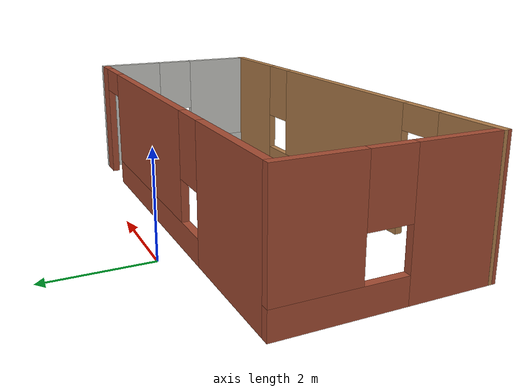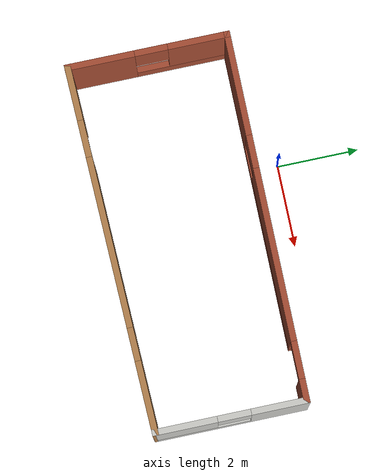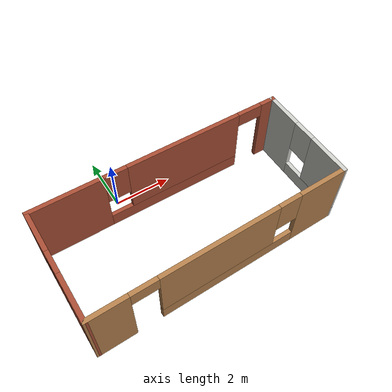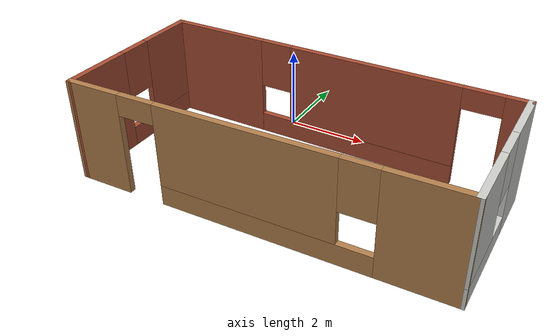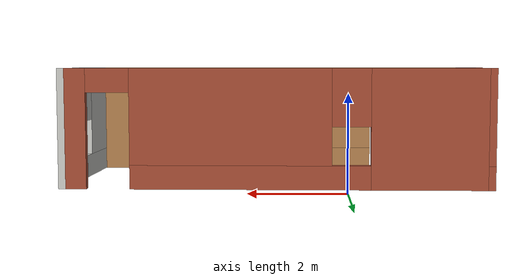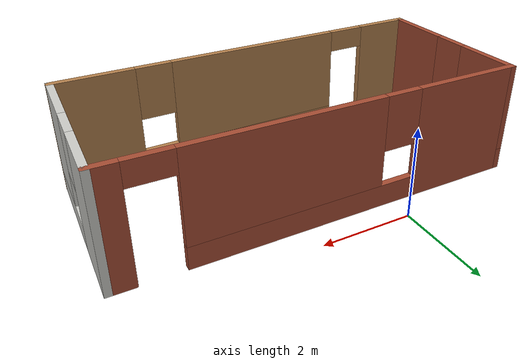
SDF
<?xml version='1.0'?>
<sdf version='1.6'>
  <model name='my_world'>
    <pose frame=''>1.455 -2.55604 0 0 -0 0</pose>
    <link name='Wall_0'>
      <pose frame=''>-4.425 0.001044 0 0 -0 1.5708</pose>
      <visual name='Wall_0_Visual_0'>
        <pose frame=''>-1.1575 0 1.25 0 -0 0</pose>
        <geometry>
          <box>
            <size>1.685 0.15 2.5</size>
          </box>
        </geometry>
        <material>
          <script>
            <uri>file://media/materials/scripts/gazebo.material</uri>
            <name>Gazebo/Bricks</name>
          </script>
          <ambient>1 1 1 1</ambient>
        </material>
      </visual>
      <collision name='Wall_0_Collision_0'>
        <geometry>
          <box>
            <size>1.685 0.15 2.5</size>
          </box>
        </geometry>
        <pose frame=''>-1.1575 0 1.25 0 -0 0</pose>
      </collision>
      <visual name='Wall_0_Visual_1'>
        <pose frame=''>0.8425 0 0.25 0 -0 0</pose>
        <geometry>
          <box>
            <size>2.315 0.15 0.5</size>
          </box>
        </geometry>
        <material>
          <script>
            <uri>file://media/materials/scripts/gazebo.material</uri>
            <name>Gazebo/Bricks</name>
          </script>
          <ambient>1 1 1 1</ambient>
        </material>
      </visual>
      <collision name='Wall_0_Collision_1'>
        <geometry>
          <box>
            <size>2.315 0.15 0.5</size>
          </box>
        </geometry>
        <pose frame=''>0.8425 0 0.25 0 -0 0</pose>
      </collision>
      <visual name='Wall_0_Visual_2'>
        <pose frame=''>1.2425 0 1.5 0 -0 0</pose>
        <geometry>
          <box>
            <size>1.515 0.15 2</size>
          </box>
        </geometry>
        <material>
          <script>
            <uri>file://media/materials/scripts/gazebo.material</uri>
            <name>Gazebo/Bricks</name>
          </script>
          <ambient>1 1 1 1</ambient>
        </material>
      </visual>
      <collision name='Wall_0_Collision_2'>
        <geometry>
          <box>
            <size>1.515 0.15 2</size>
          </box>
        </geometry>
        <pose frame=''>1.2425 0 1.5 0 -0 0</pose>
      </collision>
      <visual name='Wall_0_Visual_3'>
        <pose frame=''>0.085 0 1.9 0 -0 0</pose>
        <geometry>
          <box>
            <size>0.8 0.15 1.2</size>
          </box>
        </geometry>
        <material>
          <script>
            <uri>file://media/materials/scripts/gazebo.material</uri>
            <name>Gazebo/Bricks</name>
          </script>
          <ambient>1 1 1 1</ambient>
        </material>
      </visual>
      <collision name='Wall_0_Collision_3'>
        <geometry>
          <box>
            <size>0.8 0.15 1.2</size>
          </box>
        </geometry>
        <pose frame=''>0.085 0 1.9 0 -0 0</pose>
      </collision>
    </link>
    <link name='Wall_1'>
      <pose frame=''>0 1.92604 0 0 -0 0</pose>
      <visual name='Wall_1_Visual_0'>
        <pose frame=''>-3.2275 0 1.25 0 -0 0</pose>
        <geometry>
          <box>
            <size>2.545 0.15 2.5</size>
          </box>
        </geometry>
        <material>
          <script>
            <uri>file://media/materials/scripts/gazebo.material</uri>
            <name>Gazebo/Bricks</name>
          </script>
          <ambient>0.996078 0.47451 0.0196078 1</ambient>
        </material>
      </visual>
      <collision name='Wall_1_Collision_0'>
        <geometry>
          <box>
            <size>2.545 0.15 2.5</size>
          </box>
        </geometry>
        <pose frame=''>-3.2275 0 1.25 0 -0 0</pose>
      </collision>
      <visual name='Wall_1_Visual_1'>
        <pose frame=''>4.2075 0 1.25 0 -0 0</pose>
        <geometry>
          <box>
            <size>0.585 0.15 2.5</size>
          </box>
        </geometry>
        <material>
          <script>
            <uri>file://media/materials/scripts/gazebo.material</uri>
            <name>Gazebo/Bricks</name>
          </script>
          <ambient>0.996078 0.47451 0.0196078 1</ambient>
        </material>
      </visual>
      <collision name='Wall_1_Collision_1'>
        <geometry>
          <box>
            <size>0.585 0.15 2.5</size>
          </box>
        </geometry>
        <pose frame=''>4.2075 0 1.25 0 -0 0</pose>
      </collision>
      <visual name='Wall_1_Visual_2'>
        <pose frame=''>0.53 0 0.25 0 -0 0</pose>
        <geometry>
          <box>
            <size>4.97 0.15 0.5</size>
          </box>
        </geometry>
        <material>
          <script>
            <uri>file://media/materials/scripts/gazebo.material</uri>
            <name>Gazebo/Bricks</name>
          </script>
          <ambient>0.996078 0.47451 0.0196078 1</ambient>
        </material>
      </visual>
      <collision name='Wall_1_Collision_2'>
        <geometry>
          <box>
            <size>4.97 0.15 0.5</size>
          </box>
        </geometry>
        <pose frame=''>0.53 0 0.25 0 -0 0</pose>
      </collision>
      <visual name='Wall_1_Visual_3'>
        <pose frame=''>0.93 0 1.5 0 -0 0</pose>
        <geometry>
          <box>
            <size>4.17 0.15 2</size>
          </box>
        </geometry>
        <material>
          <script>
            <uri>file://media/materials/scripts/gazebo.material</uri>
            <name>Gazebo/Bricks</name>
          </script>
          <ambient>0.996078 0.47451 0.0196078 1</ambient>
        </material>
      </visual>
      <collision name='Wall_1_Collision_3'>
        <geometry>
          <box>
            <size>4.17 0.15 2</size>
          </box>
        </geometry>
        <pose frame=''>0.93 0 1.5 0 -0 0</pose>
      </collision>
      <visual name='Wall_1_Visual_4'>
        <pose frame=''>-1.555 0 1.9 0 -0 0</pose>
        <geometry>
          <box>
            <size>0.8 0.15 1.2</size>
          </box>
        </geometry>
        <material>
          <script>
            <uri>file://media/materials/scripts/gazebo.material</uri>
            <name>Gazebo/Bricks</name>
          </script>
          <ambient>0.996078 0.47451 0.0196078 1</ambient>
        </material>
      </visual>
      <collision name='Wall_1_Collision_4'>
        <geometry>
          <box>
            <size>0.8 0.15 1.2</size>
          </box>
        </geometry>
        <pose frame=''>-1.555 0 1.9 0 -0 0</pose>
      </collision>
      <visual name='Wall_1_Visual_5'>
        <pose frame=''>3.465 0 2.25 0 -0 0</pose>
        <geometry>
          <box>
            <size>0.9 0.15 0.5</size>
          </box>
        </geometry>
        <material>
          <script>
            <uri>file://media/materials/scripts/gazebo.material</uri>
            <name>Gazebo/Bricks</name>
          </script>
          <ambient>0.996078 0.47451 0.0196078 1</ambient>
        </material>
      </visual>
      <collision name='Wall_1_Collision_5'>
        <geometry>
          <box>
            <size>0.9 0.15 0.5</size>
          </box>
        </geometry>
        <pose frame=''>3.465 0 2.25 0 -0 0</pose>
      </collision>
    </link>
    <link name='Wall_2'>
      <pose frame=''>4.425 0.126044 0 0 0 -1.5708</pose>
      <visual name='Wall_2_Visual_0'>
        <pose frame=''>-1.1775 0 1.25 0 -0 0</pose>
        <geometry>
          <box>
            <size>1.395 0.15 2.5</size>
          </box>
        </geometry>
        <material>
          <script>
            <uri>file://media/materials/scripts/gazebo.material</uri>
            <name>Gazebo/CeilingTiled</name>
          </script>
          <ambient>0.996078 0.47451 0.0196078 1</ambient>
        </material>
      </visual>
      <collision name='Wall_2_Collision_0'>
        <geometry>
          <box>
            <size>1.395 0.15 2.5</size>
          </box>
        </geometry>
        <pose frame=''>-1.1775 0 1.25 0 -0 0</pose>
      </collision>
      <visual name='Wall_2_Visual_1'>
        <pose frame=''>0.6975 0 0.25 0 -0 0</pose>
        <geometry>
          <box>
            <size>2.355 0.15 0.5</size>
          </box>
        </geometry>
        <material>
          <script>
            <uri>file://media/materials/scripts/gazebo.material</uri>
            <name>Gazebo/CeilingTiled</name>
          </script>
          <ambient>0.996078 0.47451 0.0196078 1</ambient>
        </material>
      </visual>
      <collision name='Wall_2_Collision_1'>
        <geometry>
          <box>
            <size>2.355 0.15 0.5</size>
          </box>
        </geometry>
        <pose frame=''>0.6975 0 0.25 0 -0 0</pose>
      </collision>
      <visual name='Wall_2_Visual_2'>
        <pose frame=''>1.0975 0 1.5 0 -0 0</pose>
        <geometry>
          <box>
            <size>1.555 0.15 2</size>
          </box>
        </geometry>
        <material>
          <script>
            <uri>file://media/materials/scripts/gazebo.material</uri>
            <name>Gazebo/CeilingTiled</name>
          </script>
          <ambient>0.996078 0.47451 0.0196078 1</ambient>
        </material>
      </visual>
      <collision name='Wall_2_Collision_2'>
        <geometry>
          <box>
            <size>1.555 0.15 2</size>
          </box>
        </geometry>
        <pose frame=''>1.0975 0 1.5 0 -0 0</pose>
      </collision>
      <visual name='Wall_2_Visual_3'>
        <pose frame=''>-0.08 0 1.9 0 -0 0</pose>
        <geometry>
          <box>
            <size>0.8 0.15 1.2</size>
          </box>
        </geometry>
        <material>
          <script>
            <uri>file://media/materials/scripts/gazebo.material</uri>
            <name>Gazebo/CeilingTiled</name>
          </script>
          <ambient>0.996078 0.47451 0.0196078 1</ambient>
        </material>
      </visual>
      <collision name='Wall_2_Collision_3'>
        <geometry>
          <box>
            <size>0.8 0.15 1.2</size>
          </box>
        </geometry>
        <pose frame=''>-0.08 0 1.9 0 -0 0</pose>
      </collision>
    </link>
    <link name='Wall_3'>
      <pose frame=''>0 -1.79896 0 0 0 -3.11335</pose>
      <visual name='Wall_3_Visual_0'>
        <pose frame=''>-3.607 0 1.25 0 -0 0</pose>
        <geometry>
          <box>
            <size>1.78952 0.15 2.5</size>
          </box>
        </geometry>
        <material>
          <script>
            <uri>file://media/materials/scripts/gazebo.material</uri>
            <name>Gazebo/Wood</name>
          </script>
          <ambient>1 1 1 1</ambient>
        </material>
      </visual>
      <collision name='Wall_3_Collision_0'>
        <geometry>
          <box>
            <size>1.78952 0.15 2.5</size>
          </box>
        </geometry>
        <pose frame=''>-3.607 0 1.25 0 -0 0</pose>
      </collision>
      <visual name='Wall_3_Visual_1'>
        <pose frame=''>3.81518 0 1.25 0 -0 0</pose>
        <geometry>
          <box>
            <size>1.37317 0.15 2.5</size>
          </box>
        </geometry>
        <material>
          <script>
            <uri>file://media/materials/scripts/gazebo.material</uri>
            <name>Gazebo/Wood</name>
          </script>
          <ambient>1 1 1 1</ambient>
        </material>
      </visual>
      <collision name='Wall_3_Collision_1'>
        <geometry>
          <box>
            <size>1.37317 0.15 2.5</size>
          </box>
        </geometry>
        <pose frame=''>3.81518 0 1.25 0 -0 0</pose>
      </collision>
      <visual name='Wall_3_Visual_2'>
        <pose frame=''>-0.241824 0 0.25 0 -0 0</pose>
        <geometry>
          <box>
            <size>4.94083 0.15 0.5</size>
          </box>
        </geometry>
        <material>
          <script>
            <uri>file://media/materials/scripts/gazebo.material</uri>
            <name>Gazebo/Wood</name>
          </script>
          <ambient>1 1 1 1</ambient>
        </material>
      </visual>
      <collision name='Wall_3_Collision_2'>
        <geometry>
          <box>
            <size>4.94083 0.15 0.5</size>
          </box>
        </geometry>
        <pose frame=''>-0.241824 0 0.25 0 -0 0</pose>
      </collision>
      <visual name='Wall_3_Visual_3'>
        <pose frame=''>0.158176 0 1.5 0 -0 0</pose>
        <geometry>
          <box>
            <size>4.14083 0.15 2</size>
          </box>
        </geometry>
        <material>
          <script>
            <uri>file://media/materials/scripts/gazebo.material</uri>
            <name>Gazebo/Wood</name>
          </script>
          <ambient>1 1 1 1</ambient>
        </material>
      </visual>
      <collision name='Wall_3_Collision_3'>
        <geometry>
          <box>
            <size>4.14083 0.15 2</size>
          </box>
        </geometry>
        <pose frame=''>0.158176 0 1.5 0 -0 0</pose>
      </collision>
      <visual name='Wall_3_Visual_4'>
        <pose frame=''>-2.31224 0 1.9 0 -0 0</pose>
        <geometry>
          <box>
            <size>0.8 0.15 1.2</size>
          </box>
        </geometry>
        <material>
          <script>
            <uri>file://media/materials/scripts/gazebo.material</uri>
            <name>Gazebo/Wood</name>
          </script>
          <ambient>1 1 1 1</ambient>
        </material>
      </visual>
      <collision name='Wall_3_Collision_4'>
        <geometry>
          <box>
            <size>0.8 0.15 1.2</size>
          </box>
        </geometry>
        <pose frame=''>-2.31224 0 1.9 0 -0 0</pose>
      </collision>
      <visual name='Wall_3_Visual_5'>
        <pose frame=''>2.67859 0 2.25 0 -0 0</pose>
        <geometry>
          <box>
            <size>0.9 0.15 0.5</size>
          </box>
        </geometry>
        <material>
          <script>
            <uri>file://media/materials/scripts/gazebo.material</uri>
            <name>Gazebo/Wood</name>
          </script>
          <ambient>1 1 1 1</ambient>
        </material>
      </visual>
      <collision name='Wall_3_Collision_5'>
        <geometry>
          <box>
            <size>0.9 0.15 0.5</size>
          </box>
        </geometry>
        <pose frame=''>2.67859 0 2.25 0 -0 0</pose>
      </collision>
    </link>
    <static>1</static>
  </model>
</sdf>
